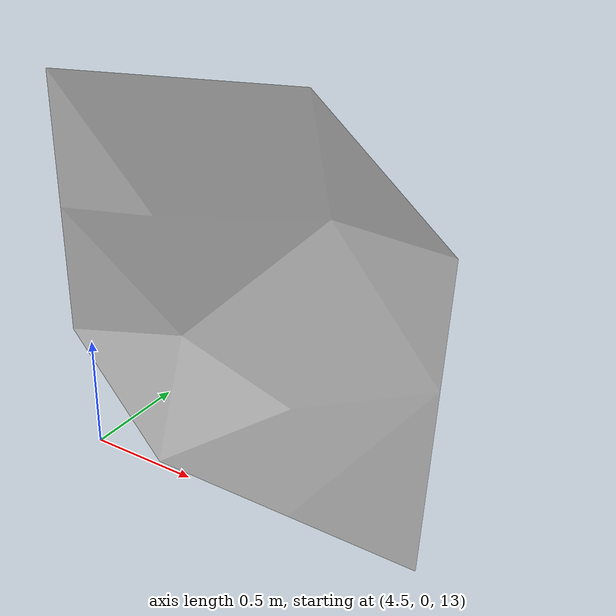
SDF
<?xml version="1.0" ?>
<sdf version="1.9">
  <model name="flowers_03">
    <static>true</static>
    <link name="link">
      <collision name="collision">
        <pose>0 0 0.2 0 0 0</pose>
        <geometry>
          <box>
            <size>0.5 0.5 0.4</size>
          </box>
        </geometry>
      </collision>
      <visual name="visual">
        <geometry>
          <mesh>
            <uri>model://flowers_03/meshes/Flowers-03.obj</uri>
          </mesh>
        </geometry>
      </visual>
    </link>
  </model>
</sdf>
